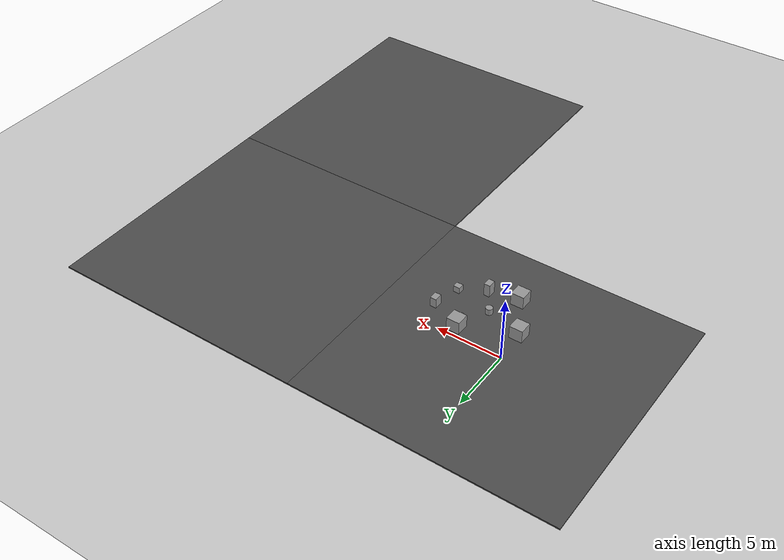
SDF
<sdf version="1.7">
 <world name="default">
  <model name="ground_plane">
   <static>1</static>
   <link name="link">
    <collision name="collision">
     <geometry><plane><normal>0 0 1</normal><size>100 100</size></plane></geometry>
     <surface>
      <contact><collide_bitmask>65535</collide_bitmask></contact>
      <friction><ode><mu>100</mu><mu2>50</mu2></ode></friction>
     </surface>
    </collision>
    <visual name="visual">
     <cast_shadows>0</cast_shadows>
     <geometry><plane><normal>0 0 1</normal><size>100 100</size></plane></geometry>
     <material>
      <script><uri>file://media/materials/scripts/gazebo.material</uri><name>Gazebo/Grey</name></script>
     </material>
    </visual>
   </link>
  </model>
  <model name="asphalt_plane">
   <static>1</static>
   <link name="link">
    <collision name="collision"><geometry><box><size>20 20 0.1</size></box></geometry></collision>
    <visual name="visual">
     <cast_shadows>0</cast_shadows>
     <geometry><box><size>20 20 0.1</size></box></geometry>
     <material>
      <script>
       <uri>model://asphalt_plane/materials/scripts</uri>
       <uri>model://asphalt_plane/materials/textures</uri>
       <name>vrc/asphalt</name>
      </script>
     </material>
    </visual>
   </link>
  </model>
  <model name="asphalt_plane_clone">
   <static>1</static>
   <link name="link">
    <collision name="collision"><geometry><box><size>20 20 0.1</size></box></geometry></collision>
    <visual name="visual">
     <cast_shadows>0</cast_shadows>
     <geometry><box><size>20 20 0.1</size></box></geometry>
     <material>
      <script>
       <uri>model://asphalt_plane/materials/scripts</uri>
       <uri>model://asphalt_plane/materials/textures</uri>
       <name>vrc/asphalt</name>
      </script>
     </material>
    </visual>
   </link>
   <pose>20 0 0 0 -0 0</pose>
  </model>
  <model name="asphalt_plane_clone_0">
   <static>1</static>
   <link name="link">
    <collision name="collision"><geometry><box><size>20 20 0.1</size></box></geometry></collision>
    <visual name="visual">
     <cast_shadows>0</cast_shadows>
     <geometry><box><size>20 20 0.1</size></box></geometry>
     <material>
      <script>
       <uri>model://asphalt_plane/materials/scripts</uri>
       <uri>model://asphalt_plane/materials/textures</uri>
       <name>vrc/asphalt</name>
      </script>
     </material>
    </visual>
   </link>
   <pose>20 -20 0 0 -0 0</pose>
  </model>
  <model name="unit_cylinder_clone_5">
   <pose>4.1551 -1.53167 0.294825 0 -0 4.4e-05</pose>
   <link name="link">
    <inertial>
     <mass>1</mass>
     <inertia><ixx>0.145833</ixx><ixy>0</ixy><ixz>0</ixz><iyy>0.145833</iyy><iyz>0</iyz><izz>0.125</izz></inertia>
    </inertial>
    <collision name="collision">
     <geometry><cylinder><radius>0.264047</radius><length>0.48967</length></cylinder></geometry>
    </collision>
    <visual name="visual">
     <geometry><cylinder><radius>0.264047</radius><length>0.48967</length></cylinder></geometry>
     <material>
      <script><name>Gazebo/Grey</name><uri>file://media/materials/scripts/gazebo.material</uri></script>
     </material>
    </visual>
   </link>
  </model>
  <model name="unit_cylinder_clone_6">
   <pose>2.93725 -3.29397 0.294838 5e-06 -1e-05 0.000148</pose>
   <link name="link">
    <inertial>
     <mass>1</mass>
     <inertia><ixx>0.145833</ixx><ixy>0</ixy><ixz>0</ixz><iyy>0.145833</iyy><iyz>0</iyz><izz>0.125</izz></inertia>
    </inertial>
    <collision name="collision">
     <geometry><cylinder><radius>0.264047</radius><length>0.48967</length></cylinder></geometry>
    </collision>
    <visual name="visual">
     <geometry><cylinder><radius>0.264047</radius><length>0.48967</length></cylinder></geometry>
     <material>
      <script><name>Gazebo/Grey</name><uri>file://media/materials/scripts/gazebo.material</uri></script>
     </material>
    </visual>
   </link>
  </model>
  <model name="unit_box_0_clone_1_clone_2">
   <pose>5.89538 -3.99875 0.301356 0 -0 1e-06</pose>
   <link name="link">
    <inertial>
     <mass>1</mass>
     <inertia>
      <ixx>0.166667</ixx>
      <ixy>0</ixy>
      <ixz>0</ixz>
      <iyy>0.166667</iyy>
      <iyz>0</iyz>
      <izz>0.166667</izz>
     </inertia>
    </inertial>
    <collision name="collision">
     <geometry><box><size>0.495294 0.467832 0.502712</size></box></geometry>
    </collision>
    <visual name="visual">
     <geometry><box><size>0.495294 0.467832 0.502712</size></box></geometry>
     <material>
      <script><name>Gazebo/Grey</name><uri>file://media/materials/scripts/gazebo.material</uri></script>
     </material>
    </visual>
   </link>
  </model>
  <model name="unit_box_1">
   <pose>1.73473 -5.44838 0.549995 -9e-06 -1e-06 0</pose>
   <link name="link">
    <inertial>
     <mass>1</mass>
     <inertia>
      <ixx>0.166667</ixx>
      <ixy>0</ixy>
      <ixz>0</ixz>
      <iyy>0.166667</iyy>
      <iyz>0</iyz>
      <izz>0.166667</izz>
     </inertia>
    </inertial>
    <collision name="collision"><geometry><box><size>1 1 1</size></box></geometry></collision>
    <visual name="visual">
     <geometry><box><size>1 1 1</size></box></geometry>
     <material>
      <script><name>Gazebo/Grey</name><uri>file://media/materials/scripts/gazebo.material</uri></script>
     </material>
    </visual>
   </link>
  </model>
  <model name="unit_box_3_clone_3">
   <pose>4 -5 0.55 0 -0 0</pose>
   <link name="link">
    <inertial>
     <mass>1</mass>
     <inertia>
      <ixx>0.166667</ixx>
      <ixy>0</ixy>
      <ixz>0</ixz>
      <iyy>0.166667</iyy>
      <iyz>0</iyz>
      <izz>0.166667</izz>
     </inertia>
    </inertial>
    <collision name="collision"><geometry><box><size>0.473217 0.637104 1</size></box></geometry></collision>
    <visual name="visual">
     <geometry><box><size>0.473217 0.637104 1</size></box></geometry>
     <material>
      <script><name>Gazebo/Grey</name><uri>file://media/materials/scripts/gazebo.material</uri></script>
     </material>
    </visual>
   </link>
  </model>
  <model name="unit_box_3_clone_4">
   <pose>6.40553 -1.89878 0.427812 0 0 -9e-06</pose>
   <link name="link">
    <inertial>
     <mass>1</mass>
     <inertia>
      <ixx>0.166667</ixx>
      <ixy>0</ixy>
      <ixz>0</ixz>
      <iyy>0.166667</iyy>
      <iyz>0</iyz>
      <izz>0.166667</izz>
     </inertia>
    </inertial>
    <collision name="collision">
     <geometry><box><size>0.473217 0.637104 0.755624</size></box></geometry>
    </collision>
    <visual name="visual">
     <geometry><box><size>0.473217 0.637104 0.755624</size></box></geometry>
     <material>
      <script><name>Gazebo/Grey</name><uri>file://media/materials/scripts/gazebo.material</uri></script>
     </material>
    </visual>
   </link>
  </model>
  <model name="unit_box_1_clone_0">
   <pose>3.96897 -0.750701 0.549995 -9e-06 -1e-06 0</pose>
   <link name="link">
    <inertial>
     <mass>1</mass>
     <inertia>
      <ixx>0.166667</ixx>
      <ixy>0</ixy>
      <ixz>0</ixz>
      <iyy>0.166667</iyy>
      <iyz>0</iyz>
      <izz>0.166667</izz>
     </inertia>
    </inertial>
    <collision name="collision"><geometry><box><size>1 1 1</size></box></geometry></collision>
    <visual name="visual">
     <geometry><box><size>1 1 1</size></box></geometry>
     <material>
      <script><name>Gazebo/Grey</name><uri>file://media/materials/scripts/gazebo.material</uri></script>
     </material>
    </visual>
   </link>
  </model>
  <model name="unit_box_2_clone">
   <pose>0.099835 -2.48786 0.549996 9e-06 1e-06 0</pose>
   <link name="link">
    <inertial>
     <mass>1</mass>
     <inertia>
      <ixx>0.166667</ixx>
      <ixy>0</ixy>
      <ixz>0</ixz>
      <iyy>0.166667</iyy>
      <iyz>0</iyz>
      <izz>0.166667</izz>
     </inertia>
    </inertial>
    <collision name="collision"><geometry><box><size>1 1 1</size></box></geometry></collision>
    <visual name="visual">
     <geometry><box><size>1 1 1</size></box></geometry>
     <material>
      <script><name>Gazebo/Grey</name><uri>file://media/materials/scripts/gazebo.material</uri></script>
     </material>
    </visual>
   </link>
  </model>
 </world>
</sdf>
